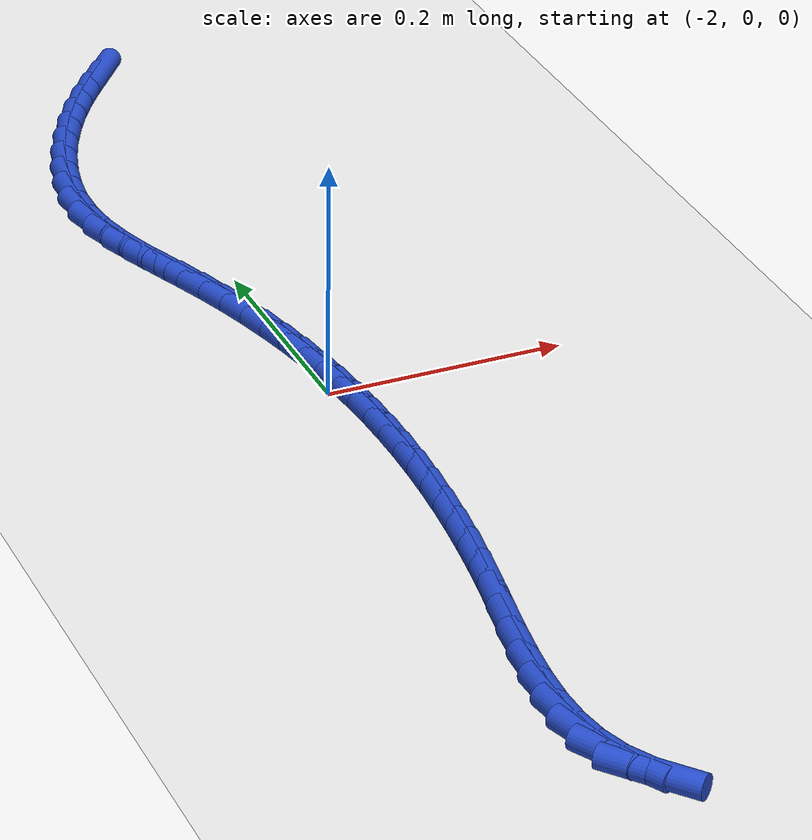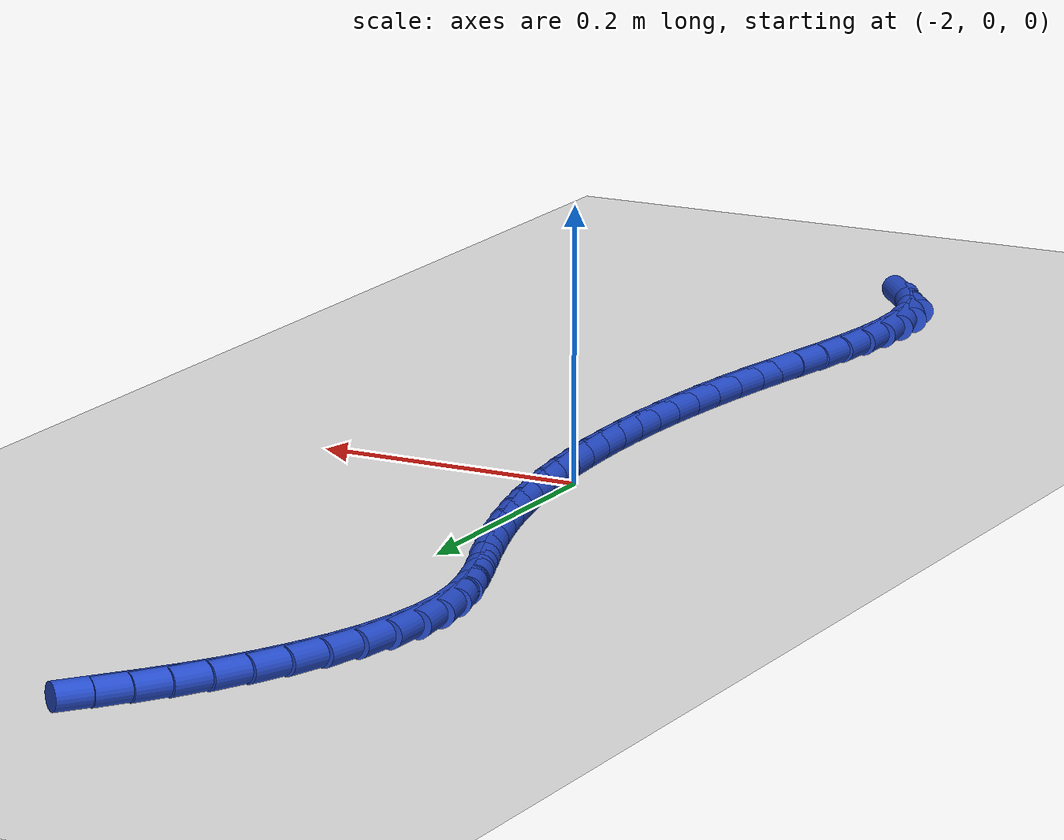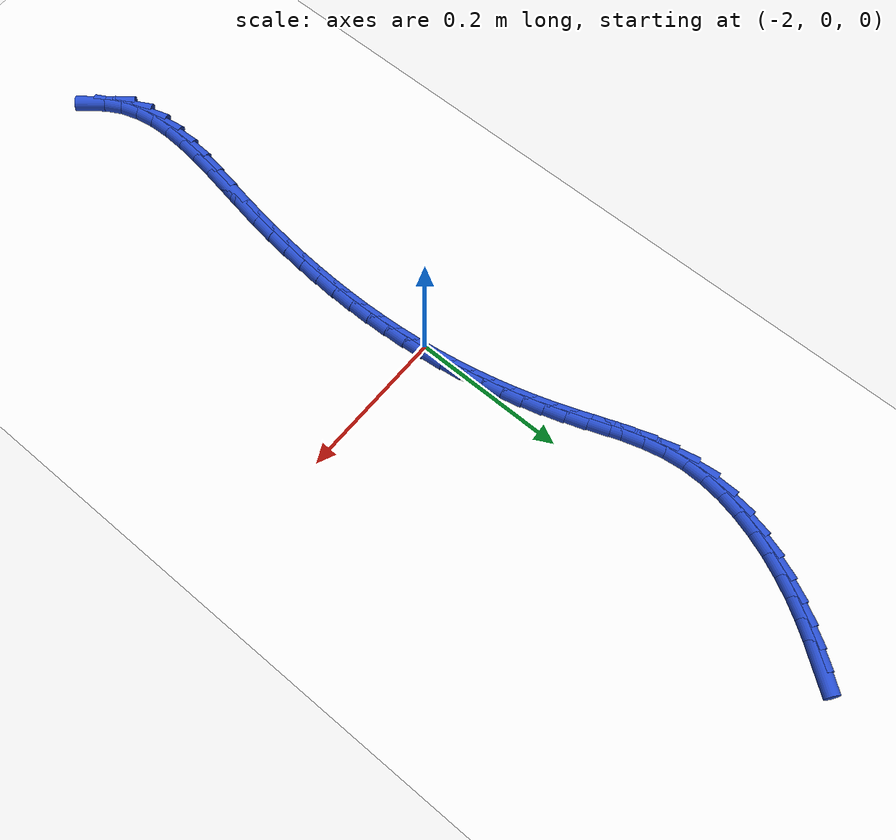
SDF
<sdf version="1.6">
 <world name="default">
  <model name="ground_plane">
   <static>1</static>
   <link name="link">
    <collision name="collision">
     <geometry><plane><normal>0 0 1</normal><size>100 100</size></plane></geometry>
     <surface><friction><ode><mu>100</mu><mu2>50</mu2></ode></friction></surface>
    </collision>
    <visual name="visual">
     <cast_shadows>0</cast_shadows>
     <geometry><plane><normal>0 0 1</normal><size>100 100</size></plane></geometry>
     <material>
      <script><uri>file://media/materials/scripts/gazebo.material</uri><name>Gazebo/WhiteGlow</name></script>
     </material>
    </visual>
   </link>
  </model>
  <model name="line">
   <link name="link_106">
    <pose>-1.9802160108688371 0.5829858299224903 0.01 0 1.57 0.9194205129931643</pose>
    <collision name="collision">
     <geometry><cylinder><radius>0.01</radius><length>0.08</length></cylinder></geometry>
    </collision>
    <visual name="visual">
     <material>
      <script><name>Gazebo/Blue</name><uri>file://media/materials/scripts/gazebo.material</uri></script>
     </material>
     <geometry><cylinder><radius>0.01</radius><length>0.08</length></cylinder></geometry>
    </visual>
   </link>
   <link name="link_107">
    <pose>-1.9955267944153916 0.5629028895896802 0.01 0 1.57 0.9562215737841985</pose>
    <collision name="collision">
     <geometry><cylinder><radius>0.01</radius><length>0.08</length></cylinder></geometry>
    </collision>
    <visual name="visual">
     <material>
      <script><name>Gazebo/Blue</name><uri>file://media/materials/scripts/gazebo.material</uri></script>
     </material>
     <geometry><cylinder><radius>0.01</radius><length>0.08</length></cylinder></geometry>
    </visual>
   </link>
   <link name="link_108">
    <pose>-2.010077974155213 0.5422848587022119 0.01 0 1.57 1.0063155790962364</pose>
    <collision name="collision">
     <geometry><cylinder><radius>0.01</radius><length>0.08</length></cylinder></geometry>
    </collision>
    <visual name="visual">
     <material>
      <script><name>Gazebo/Blue</name><uri>file://media/materials/scripts/gazebo.material</uri></script>
     </material>
     <geometry><cylinder><radius>0.01</radius><length>0.08</length></cylinder></geometry>
    </visual>
   </link>
   <link name="link_109">
    <pose>-2.0238947841566715 0.5204645639777289 0.01 0 1.57 1.064620225801885</pose>
    <collision name="collision">
     <geometry><cylinder><radius>0.01</radius><length>0.08</length></cylinder></geometry>
    </collision>
    <visual name="visual">
     <material>
      <script><name>Gazebo/Blue</name><uri>file://media/materials/scripts/gazebo.material</uri></script>
     </material>
     <geometry><cylinder><radius>0.01</radius><length>0.08</length></cylinder></geometry>
    </visual>
   </link>
   <link name="link_110">
    <pose>-2.0369257491400736 0.4969577782564281 0.01 0 1.57 1.1262441777739685</pose>
    <collision name="collision">
     <geometry><cylinder><radius>0.01</radius><length>0.08</length></cylinder></geometry>
    </collision>
    <visual name="visual">
     <material>
      <script><name>Gazebo/Blue</name><uri>file://media/materials/scripts/gazebo.material</uri></script>
     </material>
     <geometry><cylinder><radius>0.01</radius><length>0.08</length></cylinder></geometry>
    </visual>
   </link>
   <link name="link_111">
    <pose>-2.0488406658474907 0.471945019994985 0.01 0 1.57 1.1925810226415263</pose>
    <collision name="collision">
     <geometry><cylinder><radius>0.01</radius><length>0.08</length></cylinder></geometry>
    </collision>
    <visual name="visual">
     <material>
      <script><name>Gazebo/Blue</name><uri>file://media/materials/scripts/gazebo.material</uri></script>
     </material>
     <geometry><cylinder><radius>0.01</radius><length>0.08</length></cylinder></geometry>
    </visual>
   </link>
   <link name="link_112">
    <pose>-2.0592460432800155 0.44575774423223546 0.01 0 1.57 1.2660464737744654</pose>
    <collision name="collision">
     <geometry><cylinder><radius>0.01</radius><length>0.08</length></cylinder></geometry>
    </collision>
    <visual name="visual">
     <material>
      <script><name>Gazebo/Blue</name><uri>file://media/materials/scripts/gazebo.material</uri></script>
     </material>
     <geometry><cylinder><radius>0.01</radius><length>0.08</length></cylinder></geometry>
    </visual>
   </link>
   <link name="link_113">
    <pose>-2.067748390438746 0.4187274060070161 0.01 0 1.57 1.3491747438019932</pose>
    <collision name="collision">
     <geometry><cylinder><radius>0.01</radius><length>0.08</length></cylinder></geometry>
    </collision>
    <visual name="visual">
     <material>
      <script><name>Gazebo/Blue</name><uri>file://media/materials/scripts/gazebo.material</uri></script>
     </material>
     <geometry><cylinder><radius>0.01</radius><length>0.08</length></cylinder></geometry>
    </visual>
   </link>
   <link name="link_114">
    <pose>-2.073954216324779 0.39118546035816354 0.01 0 1.57 1.4446462868217345</pose>
    <collision name="collision">
     <geometry><cylinder><radius>0.01</radius><length>0.08</length></cylinder></geometry>
    </collision>
    <visual name="visual">
     <material>
      <script><name>Gazebo/Blue</name><uri>file://media/materials/scripts/gazebo.material</uri></script>
     </material>
     <geometry><cylinder><radius>0.01</radius><length>0.08</length></cylinder></geometry>
    </visual>
   </link>
   <link name="link_115">
    <pose>-2.0774700299392097 0.363463362324514 0.01 0 1.57 1.5551176017696293</pose>
    <collision name="collision">
     <geometry><cylinder><radius>0.01</radius><length>0.08</length></cylinder></geometry>
    </collision>
    <visual name="visual">
     <material>
      <script><name>Gazebo/Blue</name><uri>file://media/materials/scripts/gazebo.material</uri></script>
     </material>
     <geometry><cylinder><radius>0.01</radius><length>0.08</length></cylinder></geometry>
    </visual>
   </link>
   <link name="link_116">
    <pose>-2.077902340283133 0.3358925669449045 0.01 0 1.57 -1.4615440816726413</pose>
    <collision name="collision">
     <geometry><cylinder><radius>0.01</radius><length>0.08</length></cylinder></geometry>
    </collision>
    <visual name="visual">
     <material>
      <script><name>Gazebo/Blue</name><uri>file://media/materials/scripts/gazebo.material</uri></script>
     </material>
     <geometry><cylinder><radius>0.01</radius><length>0.08</length></cylinder></geometry>
    </visual>
   </link>
   <link name="link_117">
    <pose>-2.0749282681327044 0.308778892290508 0.01 0 1.57 -1.350257716895019</pose>
    <collision name="collision">
     <geometry><cylinder><radius>0.01</radius><length>0.08</length></cylinder></geometry>
    </collision>
    <visual name="visual">
     <material>
      <script><name>Gazebo/Blue</name><uri>file://media/materials/scripts/gazebo.material</uri></script>
     </material>
     <geometry><cylinder><radius>0.01</radius><length>0.08</length></cylinder></geometry>
    </visual>
   </link>
   <link name="link_118">
    <pose>-2.0689609220353757 0.2821609418683756 0.01 0 1.57 -1.2710617917344047</pose>
    <collision name="collision">
     <geometry><cylinder><radius>0.01</radius><length>0.08</length></cylinder></geometry>
    </collision>
    <visual name="visual">
     <material>
      <script><name>Gazebo/Blue</name><uri>file://media/materials/scripts/gazebo.material</uri></script>
     </material>
     <geometry><cylinder><radius>0.01</radius><length>0.08</length></cylinder></geometry>
    </visual>
   </link>
   <link name="link_119">
    <pose>-2.0608508188995267 0.25591850963862894 0.01 0 1.57 -1.2238637426713004</pose>
    <collision name="collision">
     <geometry><cylinder><radius>0.01</radius><length>0.08</length></cylinder></geometry>
    </collision>
    <visual name="visual">
     <material>
      <script><name>Gazebo/Blue</name><uri>file://media/materials/scripts/gazebo.material</uri></script>
     </material>
     <geometry><cylinder><radius>0.01</radius><length>0.08</length></cylinder></geometry>
    </visual>
   </link>
   <link name="link_120">
    <pose>-2.051454254939823 0.22992929127270645 0.01 0 1.57 -1.2076300141907763</pose>
    <collision name="collision">
     <geometry><cylinder><radius>0.01</radius><length>0.08</length></cylinder></geometry>
    </collision>
    <visual name="visual">
     <material>
      <script><name>Gazebo/Blue</name><uri>file://media/materials/scripts/gazebo.material</uri></script>
     </material>
     <geometry><cylinder><radius>0.01</radius><length>0.08</length></cylinder></geometry>
    </visual>
   </link>
   <link name="link_121">
    <pose>-2.0416275263709296 0.20407098244204697 0.01 0 1.57 -1.2216111153114366</pose>
    <collision name="collision">
     <geometry><cylinder><radius>0.01</radius><length>0.08</length></cylinder></geometry>
    </collision>
    <visual name="visual">
     <material>
      <script><name>Gazebo/Blue</name><uri>file://media/materials/scripts/gazebo.material</uri></script>
     </material>
     <geometry><cylinder><radius>0.01</radius><length>0.08</length></cylinder></geometry>
    </visual>
   </link>
   <link name="link_122">
    <pose>-2.0322159920745646 0.17822260461708825 0.01 0 1.57 -1.2529762239903623</pose>
    <collision name="collision">
     <geometry><cylinder><radius>0.01</radius><length>0.08</length></cylinder></geometry>
    </collision>
    <visual name="visual">
     <material>
      <script><name>Gazebo/Blue</name><uri>file://media/materials/scripts/gazebo.material</uri></script>
     </material>
     <geometry><cylinder><radius>0.01</radius><length>0.08</length></cylinder></geometry>
    </visual>
   </link>
   <link name="link_123">
    <pose>-2.0236909867687065 0.15230851763953748 0.01 0 1.57 -1.285513313938981</pose>
    <collision name="collision">
     <geometry><cylinder><radius>0.01</radius><length>0.08</length></cylinder></geometry>
    </collision>
    <visual name="visual">
     <material>
      <script><name>Gazebo/Blue</name><uri>file://media/materials/scripts/gazebo.material</uri></script>
     </material>
     <geometry><cylinder><radius>0.01</radius><length>0.08</length></cylinder></geometry>
    </visual>
   </link>
   <link name="link_124">
    <pose>-2.016065660931618 0.12630862141825278 0.01 0 1.57 -1.3180848677844836</pose>
    <collision name="collision">
     <geometry><cylinder><radius>0.01</radius><length>0.08</length></cylinder></geometry>
    </collision>
    <visual name="visual">
     <material>
      <script><name>Gazebo/Blue</name><uri>file://media/materials/scripts/gazebo.material</uri></script>
     </material>
     <geometry><cylinder><radius>0.01</radius><length>0.08</length></cylinder></geometry>
    </visual>
   </link>
   <link name="link_125">
    <pose>-2.009325178062662 0.10020620838097943 0.01 0 1.57 -1.3505490357175962</pose>
    <collision name="collision">
     <geometry><cylinder><radius>0.01</radius><length>0.08</length></cylinder></geometry>
    </collision>
    <visual name="visual">
     <material>
      <script><name>Gazebo/Blue</name><uri>file://media/materials/scripts/gazebo.material</uri></script>
     </material>
     <geometry><cylinder><radius>0.01</radius><length>0.08</length></cylinder></geometry>
    </visual>
   </link>
   <link name="link_126">
    <pose>-2.0034547016612 0.07398457095546293 0.01 0 1.57 -1.3827645845205534</pose>
    <collision name="collision">
     <geometry><cylinder><radius>0.01</radius><length>0.08</length></cylinder></geometry>
    </collision>
    <visual name="visual">
     <material>
      <script><name>Gazebo/Blue</name><uri>file://media/materials/scripts/gazebo.material</uri></script>
     </material>
     <geometry><cylinder><radius>0.01</radius><length>0.08</length></cylinder></geometry>
    </visual>
   </link>
   <link name="link_127">
    <pose>-1.9984393952265957 0.047627001569449774 0.01 0 1.57 -1.4145937772118944</pose>
    <collision name="collision">
     <geometry><cylinder><radius>0.01</radius><length>0.08</length></cylinder></geometry>
    </collision>
    <visual name="visual">
     <material>
      <script><name>Gazebo/Blue</name><uri>file://media/materials/scripts/gazebo.material</uri></script>
     </material>
     <geometry><cylinder><radius>0.01</radius><length>0.08</length></cylinder></geometry>
    </visual>
   </link>
   <link name="link_128">
    <pose>-1.9942644222582102 0.021116792650685313 0.01 0 1.57 -1.4459050797771675</pose>
    <collision name="collision">
     <geometry><cylinder><radius>0.01</radius><length>0.08</length></cylinder></geometry>
    </collision>
    <visual name="visual">
     <material>
      <script><name>Gazebo/Blue</name><uri>file://media/materials/scripts/gazebo.material</uri></script>
     </material>
     <geometry><cylinder><radius>0.01</radius><length>0.08</length></cylinder></geometry>
    </visual>
   </link>
   <link name="link_129">
    <pose>-1.990914946255406 -0.005562763373084676 0.01 0 1.57 -1.476575566512731</pose>
    <collision name="collision">
     <geometry><cylinder><radius>0.01</radius><length>0.08</length></cylinder></geometry>
    </collision>
    <visual name="visual">
     <material>
      <script><name>Gazebo/Blue</name><uri>file://media/materials/scripts/gazebo.material</uri></script>
     </material>
     <geometry><cylinder><radius>0.01</radius><length>0.08</length></cylinder></geometry>
    </visual>
   </link>
   <link name="link_130">
    <pose>-1.9883761307175456 -0.03242837407411442 0.01 0 1.57 -1.5064929224939128</pose>
    <collision name="collision">
     <geometry><cylinder><radius>0.01</radius><length>0.08</length></cylinder></geometry>
    </collision>
    <visual name="visual">
     <material>
      <script><name>Gazebo/Blue</name><uri>file://media/materials/scripts/gazebo.material</uri></script>
     </material>
     <geometry><cylinder><radius>0.01</radius><length>0.08</length></cylinder></geometry>
    </visual>
   </link>
   <link name="link_131">
    <pose>-1.9866331391439909 -0.05949674702465815 0.01 0 1.57 -1.5355569758659864</pose>
    <collision name="collision">
     <geometry><cylinder><radius>0.01</radius><length>0.08</length></cylinder></geometry>
    </collision>
    <visual name="visual">
     <material>
      <script><name>Gazebo/Blue</name><uri>file://media/materials/scripts/gazebo.material</uri></script>
     </material>
     <geometry><cylinder><radius>0.01</radius><length>0.08</length></cylinder></geometry>
    </visual>
   </link>
   <link name="link_132">
    <pose>-1.9856711350341048 -0.08678458979697017 0.01 0 1.57 -1.5636807295747228</pose>
    <collision name="collision">
     <geometry><cylinder><radius>0.01</radius><length>0.08</length></cylinder></geometry>
    </collision>
    <visual name="visual">
     <material>
      <script><name>Gazebo/Blue</name><uri>file://media/materials/scripts/gazebo.material</uri></script>
     </material>
     <geometry><cylinder><radius>0.01</radius><length>0.08</length></cylinder></geometry>
    </visual>
   </link>
   <link name="link_133">
    <pose>-1.9854752818872492 -0.11430860996330544 0.01 0 1.57 1.5508017561395422</pose>
    <collision name="collision">
     <geometry><cylinder><radius>0.01</radius><length>0.08</length></cylinder></geometry>
    </collision>
    <visual name="visual">
     <material>
      <script><name>Gazebo/Blue</name><uri>file://media/materials/scripts/gazebo.material</uri></script>
     </material>
     <geometry><cylinder><radius>0.01</radius><length>0.08</length></cylinder></geometry>
    </visual>
   </link>
   <link name="link_134">
    <pose>-1.9860307432027868 -0.1420855150959167 0.01 0 1.57 1.524764673888951</pose>
    <collision name="collision">
     <geometry><cylinder><radius>0.01</radius><length>0.08</length></cylinder></geometry>
    </collision>
    <visual name="visual">
     <material>
      <script><name>Gazebo/Blue</name><uri>file://media/materials/scripts/gazebo.material</uri></script>
     </material>
     <geometry><cylinder><radius>0.01</radius><length>0.08</length></cylinder></geometry>
    </visual>
   </link>
   <link name="link_135">
    <pose>-1.987322682480079 -0.17013201276705886 0.01 0 1.57 1.4998467180161212</pose>
    <collision name="collision">
     <geometry><cylinder><radius>0.01</radius><length>0.08</length></cylinder></geometry>
    </collision>
    <visual name="visual">
     <material>
      <script><name>Gazebo/Blue</name><uri>file://media/materials/scripts/gazebo.material</uri></script>
     </material>
     <geometry><cylinder><radius>0.01</radius><length>0.08</length></cylinder></geometry>
    </visual>
   </link>
   <link name="link_136">
    <pose>-1.989336263218488 -0.19846481054898618 0.01 0 1.57 1.4760811283301347</pose>
    <collision name="collision">
     <geometry><cylinder><radius>0.01</radius><length>0.08</length></cylinder></geometry>
    </collision>
    <visual name="visual">
     <material>
      <script><name>Gazebo/Blue</name><uri>file://media/materials/scripts/gazebo.material</uri></script>
     </material>
     <geometry><cylinder><radius>0.01</radius><length>0.08</length></cylinder></geometry>
    </visual>
   </link>
   <link name="link_137">
    <pose>-1.9920566489173772 -0.22710061601395304 0.01 0 1.57 1.453489254253823</pose>
    <collision name="collision">
     <geometry><cylinder><radius>0.01</radius><length>0.08</length></cylinder></geometry>
    </collision>
    <visual name="visual">
     <material>
      <script><name>Gazebo/Blue</name><uri>file://media/materials/scripts/gazebo.material</uri></script>
     </material>
     <geometry><cylinder><radius>0.01</radius><length>0.08</length></cylinder></geometry>
    </visual>
   </link>
   <link name="link_138">
    <pose>-1.9954690030761082 -0.25605613673421357 0.01 0 1.57 1.4320816402821788</pose>
    <collision name="collision">
     <geometry><cylinder><radius>0.01</radius><length>0.08</length></cylinder></geometry>
    </collision>
    <visual name="visual">
     <material>
      <script><name>Gazebo/Blue</name><uri>file://media/materials/scripts/gazebo.material</uri></script>
     </material>
     <geometry><cylinder><radius>0.01</radius><length>0.08</length></cylinder></geometry>
    </visual>
   </link>
   <link name="link_139">
    <pose>-1.9995584891940434 -0.285348080282022 0.01 0 1.57 1.4118982148364079</pose>
    <collision name="collision">
     <geometry><cylinder><radius>0.01</radius><length>0.08</length></cylinder></geometry>
    </collision>
    <visual name="visual">
     <material>
      <script><name>Gazebo/Blue</name><uri>file://media/materials/scripts/gazebo.material</uri></script>
     </material>
     <geometry><cylinder><radius>0.01</radius><length>0.08</length></cylinder></geometry>
    </visual>
   </link>
   <link name="link_140">
    <pose>-2.004308970023106 -0.3149924372761948 0.01 0 1.57 1.3980632875876615</pose>
    <collision name="collision">
     <geometry><cylinder><radius>0.01</radius><length>0.08</length></cylinder></geometry>
    </collision>
    <visual name="visual">
     <material>
      <script><name>Gazebo/Blue</name><uri>file://media/materials/scripts/gazebo.material</uri></script>
     </material>
     <geometry><cylinder><radius>0.01</radius><length>0.08</length></cylinder></geometry>
    </visual>
   </link>
   <link name="link_141">
    <pose>-2.0095284350039013 -0.3449082594744297 0.01 0 1.57 1.400478429712735</pose>
    <collision name="collision">
     <geometry><cylinder><radius>0.01</radius><length>0.08</length></cylinder></geometry>
    </collision>
    <visual name="visual">
     <material>
      <script><name>Gazebo/Blue</name><uri>file://media/materials/scripts/gazebo.material</uri></script>
     </material>
     <geometry><cylinder><radius>0.01</radius><length>0.08</length></cylinder></geometry>
    </visual>
   </link>
   <link name="link_142">
    <pose>-2.014672879427268 -0.3748205844787709 0.01 0 1.57 1.4205237331597849</pose>
    <collision name="collision">
     <geometry><cylinder><radius>0.01</radius><length>0.08</length></cylinder></geometry>
    </collision>
    <visual name="visual">
     <material>
      <script><name>Gazebo/Blue</name><uri>file://media/materials/scripts/gazebo.material</uri></script>
     </material>
     <geometry><cylinder><radius>0.01</radius><length>0.08</length></cylinder></geometry>
    </visual>
   </link>
   <link name="link_143">
    <pose>-2.0191563631848606 -0.4044313356972604 0.01 0 1.57 1.459692152563436</pose>
    <collision name="collision">
     <geometry><cylinder><radius>0.01</radius><length>0.08</length></cylinder></geometry>
    </collision>
    <visual name="visual">
     <material>
      <script><name>Gazebo/Blue</name><uri>file://media/materials/scripts/gazebo.material</uri></script>
     </material>
     <geometry><cylinder><radius>0.01</radius><length>0.08</length></cylinder></geometry>
    </visual>
   </link>
   <link name="link_144">
    <pose>-2.02239294616833 -0.43344243653793973 0.01 0 1.57 1.5209062898067307</pose>
    <collision name="collision">
     <geometry><cylinder><radius>0.01</radius><length>0.08</length></cylinder></geometry>
    </collision>
    <visual name="visual">
     <material>
      <script><name>Gazebo/Blue</name><uri>file://media/materials/scripts/gazebo.material</uri></script>
     </material>
     <geometry><cylinder><radius>0.01</radius><length>0.08</length></cylinder></geometry>
    </visual>
   </link>
   <link name="link_145">
    <pose>-2.023796688269331 -0.4615558104088508 0.01 0 1.57 -1.5331050282718823</pose>
    <collision name="collision">
     <geometry><cylinder><radius>0.01</radius><length>0.08</length></cylinder></geometry>
    </collision>
    <visual name="visual">
     <material>
      <script><name>Gazebo/Blue</name><uri>file://media/materials/scripts/gazebo.material</uri></script>
     </material>
     <geometry><cylinder><radius>0.01</radius><length>0.08</length></cylinder></geometry>
    </visual>
   </link>
   <link name="link_146">
    <pose>-2.022781649379516 -0.4884733807180355 0.01 0 1.57 -1.4139836492826785</pose>
    <collision name="collision">
     <geometry><cylinder><radius>0.01</radius><length>0.08</length></cylinder></geometry>
    </collision>
    <visual name="visual">
     <material>
      <script><name>Gazebo/Blue</name><uri>file://media/materials/scripts/gazebo.material</uri></script>
     </material>
     <geometry><cylinder><radius>0.01</radius><length>0.08</length></cylinder></geometry>
    </visual>
   </link>
   <link name="link_147">
    <pose>-2.018761889390538 -0.5138970708735352 0.01 0 1.57 -1.259241756675881</pose>
    <collision name="collision">
     <geometry><cylinder><radius>0.01</radius><length>0.08</length></cylinder></geometry>
    </collision>
    <visual name="visual">
     <material>
      <script><name>Gazebo/Blue</name><uri>file://media/materials/scripts/gazebo.material</uri></script>
     </material>
     <geometry><cylinder><radius>0.01</radius><length>0.08</length></cylinder></geometry>
    </visual>
   </link>
   <link name="link_148">
    <pose>-2.0111514681940514 -0.5375288042833922 0.01 0 1.57 -1.0703939947246834</pose>
    <collision name="collision">
     <geometry><cylinder><radius>0.01</radius><length>0.08</length></cylinder></geometry>
    </collision>
    <visual name="visual">
     <material>
      <script><name>Gazebo/Blue</name><uri>file://media/materials/scripts/gazebo.material</uri></script>
     </material>
     <geometry><cylinder><radius>0.01</radius><length>0.08</length></cylinder></geometry>
    </visual>
   </link>
   <link name="link_149">
    <pose>-1.999370193068828 -0.5590736767391996 0.01 0 1.57 -0.8813626487176133</pose>
    <collision name="collision">
     <geometry><cylinder><radius>0.01</radius><length>0.08</length></cylinder></geometry>
    </collision>
    <visual name="visual">
     <material>
      <script><name>Gazebo/Blue</name><uri>file://media/materials/scripts/gazebo.material</uri></script>
     </material>
     <geometry><cylinder><radius>0.01</radius><length>0.08</length></cylinder></geometry>
    </visual>
   </link>
  </model>
 </world>
</sdf>
